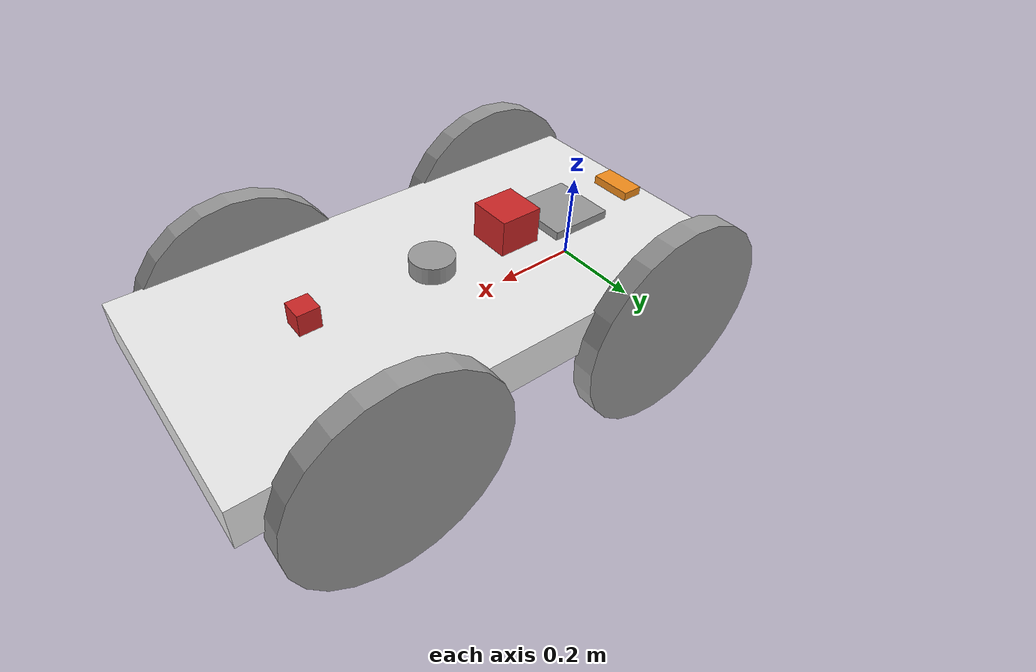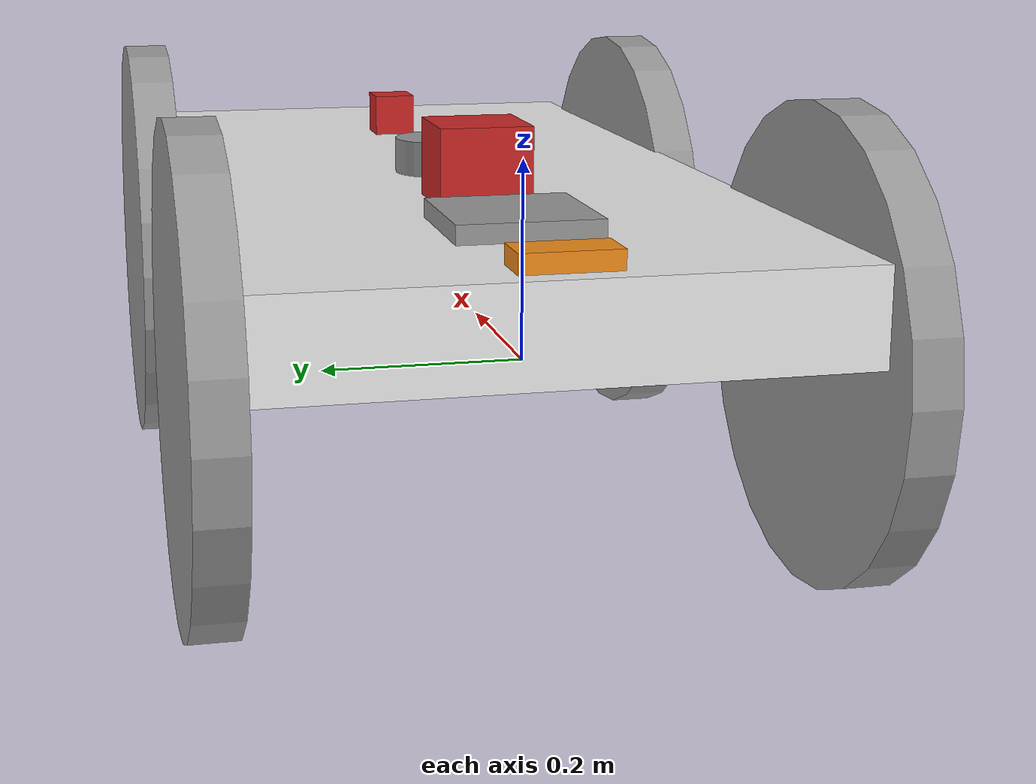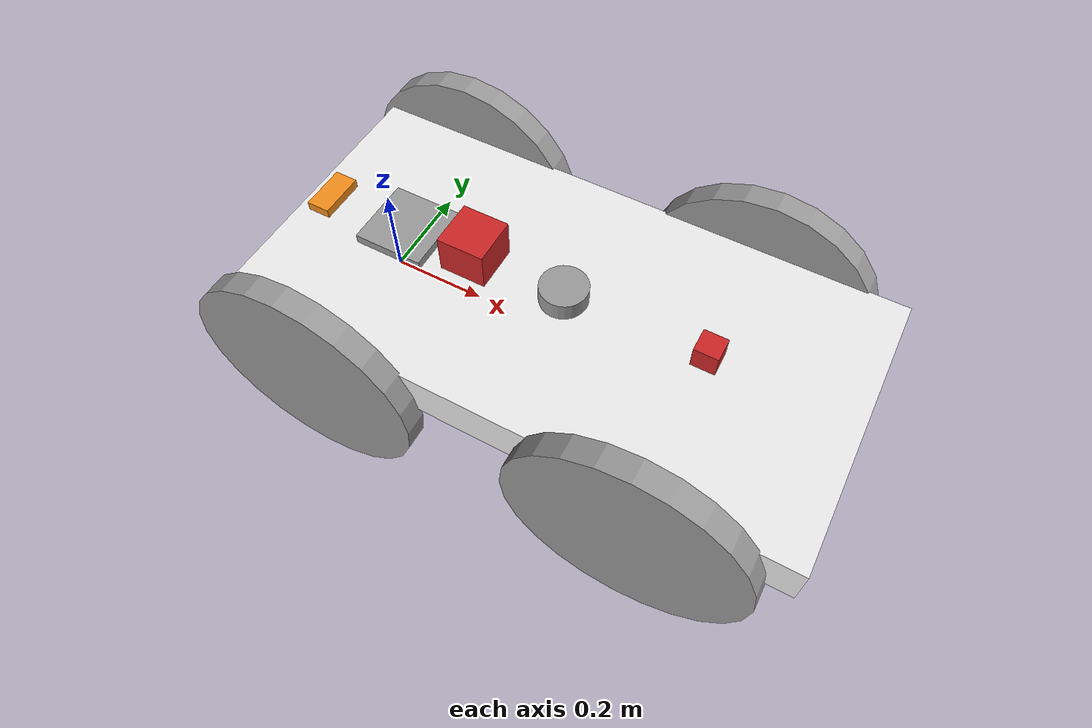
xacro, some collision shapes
<?xml version='1.0'?>

<robot name="robot" xmlns:xacro="http://www.ros.org/wiki/xacro">

  <xacro:include filename="$(find robot)/urdf/robot.gazebo" />

  <!-- COLOR REFERENCE -->

  <gazebo reference="fl_wheel">
    <material>Gazebo/Grey</material>
  </gazebo>

  <gazebo reference="fr_wheel">
    <material>Gazebo/Grey</material>
  </gazebo>

  <gazebo reference="bl_wheel">
    <material>Gazebo/Grey</material>
  </gazebo>

  <gazebo reference="br_wheel">
    <material>Gazebo/Grey</material>
  </gazebo>

  <gazebo reference="camera">
    <material>Gazebo/Red</material>
  </gazebo>

  <gazebo reference="gps_link">
    <material>Gazebo/Grey</material>
  </gazebo>

  <gazebo reference="imu_link">
    <material>Gazebo/Grey</material>
  </gazebo>

  <gazebo reference="chassis">
    <material>Gazebo/White</material>
  </gazebo>

  <gazebo reference="hokuyo">
    <material>Gazebo/Red</material>
  </gazebo>

  <gazebo reference="ZED2_link">
    <material>Gazebo/Orange</material>
  </gazebo>

  <!-- LINKS -->

  <!-- ROBOT FOOTPRINT -->

  <link name="robot_footprint"></link>

  <joint name="robot_footprint_joint" type="fixed">
    <origin xyz="0 0 0" rpy="0 0 0" />
    <parent link="robot_footprint"/>
    <child link="chassis" />
  </joint>

  <!-- CHASSIS -->

  <link name='chassis'>
    <pose>0 0 0.1 0 0 0</pose>

    <inertial>
      <mass value="15.0"/>
      <origin xyz="0.0 0 0" rpy=" 0 0 0"/>
      <inertia
          ixx="0.1" ixy="0" ixz="0"
          iyy="0.1" iyz="0"
          izz="0.1"
      />
    </inertial>

    <collision>
      <origin xyz="0.4 0 0.075" rpy=" 0 0 0"/>
      <geometry>
        <box size="1.2 0.6 0.25"/>
      </geometry>
    </collision>

    <visual>
      <origin xyz="0.4 0 0.075" rpy=" 0 0 0"/>
      <geometry>
       <box size="1.2 0.6 0.1"/>
      </geometry>
    </visual>

  </link>

  <!-- WHEELS -->

  <!-- FRONT RIGHT -->

  <link name="fr_wheel">
    <inertial>
      <mass value="5"/>
      <origin xyz="0 0 0" rpy="0 1.5707 1.5707"/>
      <inertia
        ixx="0.1" ixy="0.0" ixz="0.0"
        iyy="0.1" iyz="0.0"
        izz="0.1"
      />
    </inertial>

    <collision>
      <origin xyz="0 0 0" rpy="0 1.5707 1.5707"/>
      <geometry>
        <cylinder radius="0.25" length="0.05"/>
      </geometry>
    </collision>

    <visual>
      <origin xyz="0 0 0" rpy="0 1.5707 1.5707"/>
      <geometry>
        <cylinder radius="0.25" length="0.05"/>
      </geometry>
    </visual>

  </link>

  <!-- FRONT LEFT -->

  <link name="fl_wheel">
    <inertial>
      <mass value="5"/>
      <origin xyz="0 0 0" rpy="0 1.5707 1.5707"/>
      <inertia
        ixx="0.1" ixy="0.0" ixz="0.0"
        iyy="0.1" iyz="0.0"
        izz="0.1"
      />
    </inertial>

    <collision>
      <origin xyz="0 0 0" rpy="0 1.5707 1.5707"/>
      <geometry>
        <cylinder radius="0.25" length="0.05"/>
      </geometry>
    </collision>

    <visual>
      <origin xyz="0 0 0" rpy="0 1.5707 1.5707"/>
      <geometry>
        <cylinder radius="0.25" length="0.05"/>
      </geometry>
    </visual>

  </link>

  <!-- BACK RIGHT -->

  <link name="br_wheel">
    <inertial>
      <mass value="5"/>
      <origin xyz="0 0 0" rpy="0 1.5707 1.5707"/>
      <inertia
        ixx="0.1" ixy="0.0" ixz="0.0"
        iyy="0.1" iyz="0.0"
        izz="0.1"
      />
    </inertial>

    <collision>
      <origin xyz="0 0 0" rpy="0 1.5707 1.5707"/>
      <geometry>
        <cylinder radius="0.25" length="0.05"/>
      </geometry>
    </collision>

    <visual>
      <origin xyz="0 0 0" rpy="0 1.5707 1.5707"/>
      <geometry>
        <cylinder radius="0.25" length="0.05"/>
      </geometry>
    </visual>

  </link>

  <!-- BACK LEFT -->

  <link name="bl_wheel">
    <inertial>
      <mass value="5"/>
      <origin xyz="0 0 0" rpy="0 1.5707 1.5707"/>
      <inertia
        ixx="0.1" ixy="0.0" ixz="0.0"
        iyy="0.1" iyz="0.0"
        izz="0.1"
      />
    </inertial>

    <collision>
      <origin xyz="0 0 0" rpy="0 1.5707 1.5707"/>
      <geometry>
        <cylinder radius="0.25" length="0.05"/>
      </geometry>
    </collision>

    <visual>
      <origin xyz="0 0 0" rpy="0 1.5707 1.5707"/>
      <geometry>
        <cylinder radius="0.25" length="0.05"/>
      </geometry>
    </visual>

  </link>

  <!-- CAMERA -->

  <link name="camera">
    <inertial>
      <mass value="0.1"/>
      <origin xyz="0 0 0.075" rpy="0 0 0"/>
      <inertia
        ixx="1e-6" ixy="0.0" ixz="0.0"
        iyy="1e-6" iyz="0.0"
        izz="1e-6"
      />
    </inertial>

    <collision>
      <origin xyz="0 0 0.075" rpy="0 0 0"/>
      <geometry>
        <box size="0.05 0.05 0.05"/>
      </geometry>
    </collision>

    <visual>
      <origin xyz="0 0 0.005" rpy="0 0 0"/>
      <geometry>
        <box size="0.05 0.05 0.05"/>
      </geometry>
    </visual>

  </link>

  <!-- LIDAR -->

  <link name="hokuyo">
    <inertial>
      <mass value="1e-5"/>
      <origin xyz="0 0 0.09" rpy="0 0 0"/>
      <inertia
        ixx="1e-6" ixy="0.0" ixz="0.0"
        iyy="1e-6" iyz="0.0"
        izz="1e-6"
      />
    </inertial>

    <collision>
      <origin xyz="0 0 0.09" rpy="0 0 0"/>
      <geometry>
        <box size="0.1 0.1 0.1"/>
      </geometry>
    </collision>

    <visual>
      <origin xyz="0 0 0.09" rpy="0 0 0"/>
      <geometry>
        <mesh filename="package://robot/meshes/hokuyo.dae"/>
      </geometry>
    </visual>

  </link>

  <!-- GPS -->

  <link name="gps_link">
    <collision>
      <origin xyz="0 0 0.1" rpy="0 0 0"/>
      <geometry>
        <box size="0.1 0.1 0.1"/>
      </geometry>
    </collision>

    <visual>
      <origin xyz="0 0 0.1" rpy="0 0 0"/>
      <geometry>
        <cylinder radius="0.05" length="0.05"/>
      </geometry>
    </visual>

    <inertial>
      <origin xyz="0 0 0.1" rpy="0 0 0"/>
      <mass value="1"/>
      <inertia
        ixx="1.0" ixy="0.0" ixz="0.0"
        iyy="1.0" iyz="0.0"
        izz="1.0"/>
    </inertial>
  </link>

  <!-- IMU -->

  <link name="imu_link">
    <visual>
      <geometry>
        <box size="0.15 0.15 0.05"/>
      </geometry>
    </visual>
    <collision>
      <geometry>
        <box size="0.15 0.15 0.05"/>
      </geometry>
    </collision>
    <inertial>
      <mass value="1e-5" />
      <origin xyz="0 0 0" rpy="0 0 0"/>
      <inertia ixx="1e-6" ixy="0" ixz="0" iyy="1e-6" iyz="0" izz="1e-6" />
    </inertial>
  </link>

  <!-- ZED 2 -->

  <link name="ZED2_link">
    <visual>
      <geometry>
        <box size="0.05 0.1 0.05"/>
      </geometry>
    </visual>
    <collision>
      <geometry>
        <box size="0.05 0.1 0.05"/>
      </geometry>
    </collision>
    <inertial>
      <mass value="1e-5" />
      <origin xyz="0 0 0" rpy="0 0 0"/>
      <inertia ixx="1e-6" ixy="0" ixz="0" iyy="1e-6" iyz="0" izz="1e-6" />
    </inertial>
  </link>

<!-- JOINTS -->

  <joint name="camera_joint" type="fixed">
    <origin xyz="0.7 0.0 0.15" rpy="0 0 0" />
    <parent link="chassis"/>
    <child link="camera" />
    <axis xyz="0 1 0"/>
  </joint>

  <joint name="hokuyo_joint" type="fixed">
    <origin xyz="0.2 0.0 0.07" rpy="0 0 0" />
    <parent link="chassis"/>
    <child link="hokuyo" />
    <axis xyz="0 1 0"/>
  </joint>

  <joint type="continuous" name="fl_wheel_joint">
    <origin xyz="0 0.32 0" rpy="0 0 0" />
    <parent link="chassis"/>
    <child link="fl_wheel" />
    <axis xyz="0 1 0" rpy="0 0 0" />
    <limit effort="10000" velocity="1000" />
    <dynamics damping="1.0" friction="1.0" />
  </joint>

  <joint type="continuous" name="fr_wheel_joint">
    <origin xyz="0 -0.32 0" rpy="0 0 0" />
    <parent link="chassis"/>
    <child link="fr_wheel" />
    <axis xyz="0 1 0" rpy="0 0 0" />
    <limit effort="10000" velocity="1000" />
    <dynamics damping="1.0" friction="1.0" />
  </joint>

    <joint type="continuous" name="bl_wheel_joint">
    <origin xyz="0.70 0.32 0" rpy="0 0 0" />
    <parent link="chassis"/>
    <child link="bl_wheel" />
    <axis xyz="0 1 0" rpy="0 0 0" />
    <limit effort="10000" velocity="1000" />
    <dynamics damping="1.0" friction="1.0" />
  </joint>

  <joint type="continuous" name="br_wheel_joint">
    <origin xyz="0.70 -0.32 0" rpy="0 0 0" />
    <parent link="chassis"/>
    <child link="br_wheel" />
    <axis xyz="0 1 0" rpy="0 0 0" />
    <limit effort="10000" velocity="1000" />
    <dynamics damping="1.0" friction="1.0" />
  </joint>

  <joint name="gps_joint" type="fixed">
    <origin xyz="0.4 0.0 0.04" rpy="0 0 0" />
    <parent link="robot_footprint"/>
    <child link="gps_link" />
    <axis xyz="0 1 0"/>
  </joint>

  <joint name="imu" type="fixed">
    <origin xyz="0.04 0 0.12" rpy="0 0 0" />
    <parent link="chassis"/>
    <child link="imu_link" />
    <axis xyz="0 1 0"/>
  </joint>

  <joint name="ZED2_joint" type="fixed">
    <origin xyz="-0.15 0 0.12" rpy="0 0 0" />
    <parent link="chassis"/>
    <child link="ZED2_link" />
    <axis xyz="0 1 0"/>
  </joint>

</robot>
